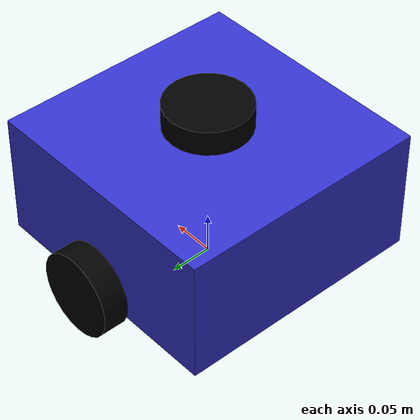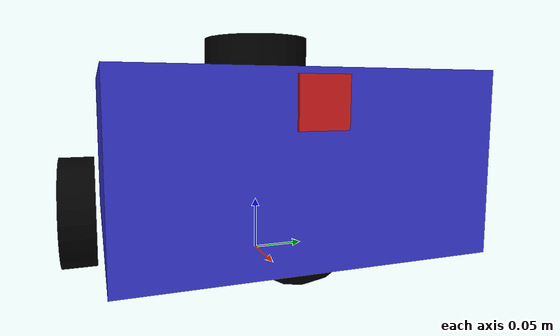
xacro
<?xml version="1.0" encoding="utf-8"?>
<robot name="diff_drive_robot" xmlns:xacro="http://www.ros.org/wiki/xacro">

  <!-- Start GZ or Ignition depending on ROS 2 Version -->
  <xacro:arg name="is_ignition" default="true"/>

  <!-- Load Simulated or Real Hardware Interfaces -->
  <xacro:arg name="is_sim" default="true"/>

<xacro:include filename="$(find robot_description)/urdf/inertial_macros.xacro" />
<xacro:include filename="$(find robot_description)/urdf/camera.xacro" />
<xacro:include filename="$(find robot_description)/urdf/gazebo_control.xacro" />
<xacro:include filename="$(find robot_description)/urdf/ros2_control.xacro" />
<xacro:include filename="$(find robot_description)/urdf/robot_body.xacro" />

</robot>

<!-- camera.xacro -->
<robot xmlns:xacro="http://www.ros.org/wiki/xacro">

    <!-- CAMERA OPTICAL FRAME -->

    <joint name="camera_optical_joint" type="fixed">
        <parent link="camera_link"/>
        <child link="camera_link_optical"/>
        <origin xyz="0 0 0" rpy="${-pi/2} 0 ${-pi/2}"/>
    </joint>

    <link name="camera_link_optical"/>

    <!-- CAMERA LINK -->

    <link name="camera_link">

        <xacro:inertial_box mass="0.001" x="0.04" y="0.04" z="0.005">
        <origin xyz="0 0 0" rpy="0 0 0"/>
        </xacro:inertial_box>

        <visual>
            <origin xyz="0 0 0" rpy="0 1.572 0"/>

            <geometry>
                <box size="0.04 0.04 0.005"/>
            </geometry>

            <material name="red">
                <color rgba="0.8 0.1 0.1 1"/>
            </material>

        </visual>

        <collision>
            <origin xyz="0 0 0" rpy="0 1.572 0"/>

            <geometry>
                <box size="0.04 0.04 0.005"/>
            </geometry>

        </collision>

    </link>

    <!-- CAMERA MOUNT -->

    <joint name="camera_joint" type="fixed">

        <origin xyz="0.15 0 0.10" rpy="0 0 0"/>

        <parent link="base_link"/>

        <child link="camera_link"/>

    </joint>

    <!-- RGB CAMERA -->

    <gazebo reference="camera_link">

        <sensor name="rgb_camera" type="camera">

            <always_on>true</always_on>

            <visualize>true</visualize>

            <update_rate>15</update_rate>

            <topic>camera/image_raw</topic>

            <gz_frame_id>camera_link_optical</gz_frame_id>

            <camera>

                <horizontal_fov>1.089</horizontal_fov>

                <image>
                    <width>640</width>
                    <height>480</height>
                    <format>R8G8B8</format>
                </image>

                <clip>
                    <near>0.05</near>
                    <far>20.0</far>
                </clip>

            </camera>

        </sensor>

    </gazebo>

</robot>

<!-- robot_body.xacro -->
<robot name="diff_drive_robot" xmlns:xacro="http://www.ros.org/wiki/xacro">

<link name="base_footprint"/>

<link name="base_link">

<xacro:inertial_box mass="6.5" x="0.35" y="0.22" z="0.16">
<origin xyz="0 0 0.08" rpy="0 0 0"/>
</xacro:inertial_box>

<visual>
<origin xyz="0 0 0.05" rpy="0 0 0"/>
<geometry>
<box size="0.30 0.30 0.15"/>
</geometry>
<material name="blue">
<color rgba="0.2 0.2 0.8 1"/>
</material>
</visual>

<collision>
<origin xyz="0 0 0.05" rpy="0 0 0"/>
<geometry>
<box size="0.30 0.30 0.15"/>
</geometry>
</collision>

</link>

<joint name="base_joint" type="fixed">
    <origin xyz="0 0 0.05" rpy="0 0 0"/>
    <parent link="base_footprint"/>
    <child link="base_link"/>
</joint>

<link name="right_wheel_link">

<xacro:inertial_cylinder mass="0.5" length="0.02" radius="0.05">
<origin xyz="0 0 0" rpy="0 0 0"/>
</xacro:inertial_cylinder>

<visual>
<origin xyz="0 0 0" rpy="1.57 0 0"/>
<geometry>
    <cylinder radius="0.05" length="0.03"/>
</geometry>
<material name="black">
    <color rgba="0.0 0.0 0.0 1"/>
</material>
</visual>

<collision>
    <origin xyz="0 0 0" rpy="1.57 0 0"/>
    <geometry>
        <sphere radius="0.05"/>
    </geometry>
</collision>

</link>

<joint name="right_wheel_joint" type="continuous">
    <origin xyz="0 -0.17 0" rpy="0 0 0"/>
    <parent link="base_link"/>
    <child link="right_wheel_link"/>
    <axis xyz="0 1 0"/>
    <dynamics damping="0.6" friction="0.2"/>
</joint>

<link name="left_wheel_link">

<xacro:inertial_cylinder mass="0.5" length="0.02" radius="0.05">
<origin xyz="0 0 0" rpy="0 0 0"/>
</xacro:inertial_cylinder>

<visual>
<origin xyz="0 0 0" rpy="1.57 0 0"/>
<geometry>
    <cylinder radius="0.05" length="0.03"/>
</geometry>
<material name="black">
    <color rgba="0.0 0.0 0.0 1"/>
</material>
</visual>

<collision>
    <origin xyz="0 0 0" rpy="1.57 0 0"/>
    <geometry>
        <sphere radius="0.05"/>
    </geometry>
</collision>

</link>

<joint name="left_wheel_joint" type="continuous">
    <origin xyz="0 0.17 0" rpy="0 0 0"/>
    <parent link="base_link"/>
    <child link="left_wheel_link"/>
    <axis xyz="0 1 0"/>
    <dynamics damping="0.6" friction="0.2"/>
</joint>

<link name="front_caster_wheel_link">

<xacro:inertial_sphere mass="0.15" radius="0.05">
<origin xyz="0 0 0" rpy="0 0 0"/>
</xacro:inertial_sphere>

<visual>
<origin xyz="0 0 0" rpy="1.57 0 0"/>
<geometry>
    <sphere radius="0.0495" />
</geometry>
<material name="black">
    <color rgba="0.0 0.0 0.0 1"/>
</material>
</visual>

<collision>
<origin xyz="0 0 0" rpy="1.57 0 0"/>
<geometry>
    <sphere radius="0.0495" />
</geometry>
</collision>

</link>

<joint name="front_caster_wheel_joint" type="fixed">
<origin xyz="0.10 0 0" rpy="0 0 0"/>
<parent link="base_link"/>
<child link="front_caster_wheel_link"/>
</joint>

<link name="back_caster_wheel_link">

<xacro:inertial_sphere mass="0.15" radius="0.05">
<origin xyz="0 0 0" rpy="0 0 0"/>
</xacro:inertial_sphere>

<visual>
<origin xyz="0 0 0" rpy="1.57 0 0"/>
<geometry>
    <sphere radius="0.0495" />
</geometry>
<material name="black">
    <color rgba="0.0 0.0 0.0 1"/>
</material>
</visual>

<collision>
<origin xyz="0 0 0" rpy="1.57 0 0"/>
<geometry>
    <sphere radius="0.0495" />
</geometry>
</collision>

</link>

<joint name="back_caster_wheel_joint" type="fixed">
<origin xyz="-0.10 0 0" rpy="0 0 0"/>
<parent link="base_link"/>
<child link="back_caster_wheel_link"/>
</joint>

<link name="imu_link">
    <xacro:inertial_box mass="0.001" x="0.04" y="0.04" z="0.005">
    <origin xyz="0 0 0" rpy="0 0 0"/>
    </xacro:inertial_box>

    <visual>
        <origin xyz="0 0 0" rpy="0 0 0"/>

        <geometry>
            <box size="0.04 0.04 0.005"/>
        </geometry>

        <material name="red">
            <color rgba="0.8 0.1 0.1 1"/>
        </material>

    </visual>

    <collision>
        <origin xyz="0 0 0" rpy="0 0 0"/>

        <geometry>
            <box size="0.04 0.04 0.005"/>
        </geometry>

    </collision>
</link>

<joint name="imu_joint" type="fixed">
<origin xyz="0 0 0.10" rpy="0 0 0"/>
<parent link="base_link" />
<child link="imu_link" />
<axis xyz="0 0 0" />
</joint>

<link name="laser_link">

<xacro:inertial_cylinder mass="0.005" length="0.02" radius="0.05">
<origin xyz="0 0 0" rpy="0 0 0"/>
</xacro:inertial_cylinder>

<visual>
<origin xyz="0 0 0" rpy="0 0 0"/>
<geometry>
    <cylinder radius="0.05" length="0.03"/>
</geometry>
<material name="black">
    <color rgba="0.0 0.0 0.0 1"/>
</material>
</visual>

<collision>
<origin xyz="0 0 0" rpy="0 0 0"/>
<geometry>
    <cylinder radius="0.05" length="0.03"/>
</geometry>
</collision>

</link>

<joint name="laser_joint" type="fixed">
<origin xyz="0 0 0.145" rpy="0 0 0"/>
<parent link="base_link"/>
<child link="laser_link"/>
</joint>

</robot>
